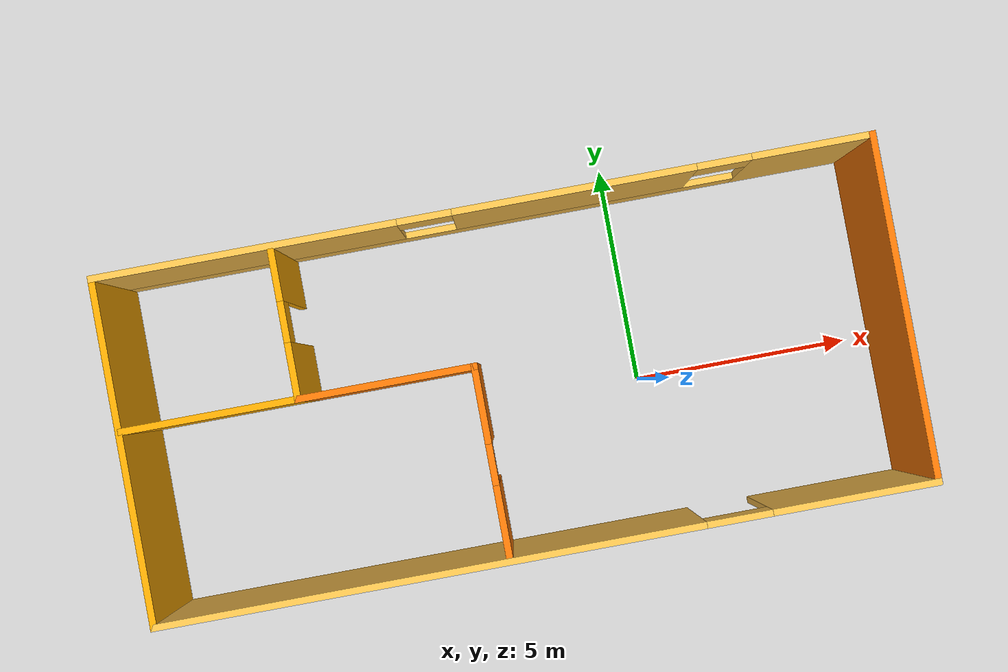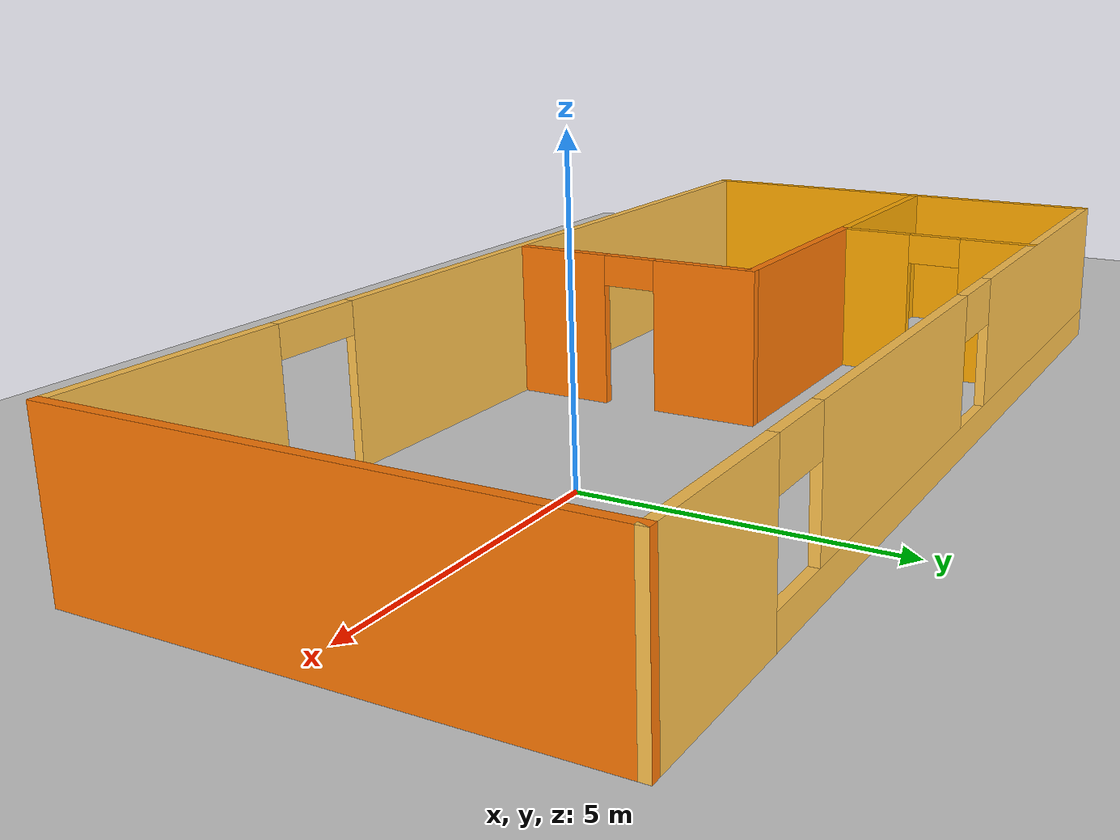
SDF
<sdf version="1.6">
 <world name="default">
  <light name="sun" type="directional">
   <pose>0 0 10 0 -0 0</pose>
   <diffuse>0.8 0.8 0.8 1</diffuse>
   <specular>0.2 0.2 0.2 1</specular>
   <attenuation>
    <range>1000</range>
    <constant>0.9</constant>
    <linear>0.01</linear>
    <quadratic>0.001</quadratic>
   </attenuation>
   <direction>-0.5 0.1 -0.9</direction>
  </light>
  <model name="ground_plane">
   <static>1</static>
   <link name="link">
    <collision name="collision">
     <geometry><plane><normal>0 0 1</normal><size>100 100</size></plane></geometry>
     <surface>
      <contact><collide_bitmask>65535</collide_bitmask></contact>
      <friction><ode><mu>100</mu><mu2>50</mu2></ode></friction>
     </surface>
    </collision>
    <visual name="visual">
     <cast_shadows>0</cast_shadows>
     <geometry><plane><normal>0 0 1</normal><size>100 100</size></plane></geometry>
     <material>
      <script><uri>file://media/materials/scripts/gazebo.material</uri><name>Gazebo/Grey</name></script>
     </material>
    </visual>
   </link>
  </model>
  <gravity>0 0 -9.8</gravity>
  <magnetic_field>6e-06 2.3e-05 -4.2e-05</magnetic_field>
  <atmosphere type="adiabatic"/>
  <physics name="default_physics" default="0" type="ode">
   <max_step_size>0.001</max_step_size>
   <real_time_factor>1</real_time_factor>
   <real_time_update_rate>1000</real_time_update_rate>
  </physics>
  <scene><ambient>0.4 0.4 0.4 1</ambient><background>0.7 0.7 0.7 1</background><shadows>1</shadows></scene>
  <spherical_coordinates>
   <surface_model>EARTH_WGS84</surface_model>
   <latitude_deg>0</latitude_deg>
   <longitude_deg>0</longitude_deg>
   <elevation>0</elevation>
   <heading_deg>0</heading_deg>
  </spherical_coordinates>
  <model name="Gustavo.world">
   <pose>-2.8936 0.485835 0 0 -0 0</pose>
   <link name="Wall_26">
    <collision name="Wall_26_Collision">
     <geometry><box><size>7.75 0.15 2.5</size></box></geometry>
     <pose>0 0 1.25 0 -0 0</pose>
    </collision>
    <visual name="Wall_26_Visual">
     <pose>0 0 1.25 0 -0 0</pose>
     <geometry><box><size>7.75 0.15 2.5</size></box></geometry>
     <material>
      <script><uri>file://media/materials/scripts/gazebo.material</uri><name>Gazebo/Grey</name></script>
      <ambient>1 0.666667 0 1</ambient>
     </material>
     <meta><layer>0</layer></meta>
    </visual>
    <pose>-8.55 0 0 0 0 -1.5708</pose>
   </link>
   <link name="Wall_27">
    <pose>0 -3.8 0 0 -0 0</pose>
    <visual name="Wall_27_Visual_0">
     <pose>-2.5641 0 1.25 0 -0 0</pose>
     <geometry><box><size>12.1218 0.15 2.5</size></box></geometry>
     <material>
      <script><uri>file://media/materials/scripts/gazebo.material</uri><name>Gazebo/Grey</name></script>
      <ambient>1 0.764706 0.305882 1</ambient>
     </material>
     <meta><layer>0</layer></meta>
    </visual>
    <collision name="Wall_27_Collision_0">
     <geometry><box><size>12.1218 0.15 2.5</size></box></geometry>
     <pose>-2.5641 0 1.25 0 -0 0</pose>
    </collision>
    <visual name="Wall_27_Visual_1">
     <pose>6.78173 0 1.25 0 -0 0</pose>
     <geometry><box><size>3.68654 0.15 2.5</size></box></geometry>
     <material>
      <script><uri>file://media/materials/scripts/gazebo.material</uri><name>Gazebo/Grey</name></script>
      <ambient>1 0.764706 0.305882 1</ambient>
     </material>
     <meta><layer>0</layer></meta>
    </visual>
    <collision name="Wall_27_Collision_1">
     <geometry><box><size>3.68654 0.15 2.5</size></box></geometry>
     <pose>6.78173 0 1.25 0 -0 0</pose>
    </collision>
    <visual name="Wall_27_Visual_2">
     <pose>4.21763 0 2.25 0 -0 0</pose>
     <geometry><box><size>1.44166 0.15 0.5</size></box></geometry>
     <material>
      <script><uri>file://media/materials/scripts/gazebo.material</uri><name>Gazebo/Grey</name></script>
      <ambient>1 0.764706 0.305882 1</ambient>
     </material>
     <meta><layer>0</layer></meta>
    </visual>
    <collision name="Wall_27_Collision_2">
     <geometry><box><size>1.44166 0.15 0.5</size></box></geometry>
     <pose>4.21763 0 2.25 0 -0 0</pose>
    </collision>
   </link>
   <link name="Wall_28">
    <collision name="Wall_28_Collision">
     <geometry><box><size>7.75 0.15 2.5</size></box></geometry>
     <pose>0 0 1.25 0 -0 0</pose>
    </collision>
    <visual name="Wall_28_Visual">
     <pose>0 0 1.25 0 -0 0</pose>
     <geometry><box><size>7.75 0.15 2.5</size></box></geometry>
     <material>
      <script><uri>file://media/materials/scripts/gazebo.material</uri><name>Gazebo/Grey</name></script>
      <ambient>0.996078 0.47451 0.0196078 1</ambient>
     </material>
     <meta><layer>0</layer></meta>
    </visual>
    <pose>8.55 0 0 0 -0 1.5708</pose>
   </link>
   <link name="Wall_29">
    <pose>0 3.8 0 0 -0 3.14159</pose>
    <visual name="Wall_29_Visual_0">
     <pose>-7.26297 0 1.25 0 -0 0</pose>
     <geometry><box><size>2.72406 0.15 2.5</size></box></geometry>
     <material>
      <script><uri>file://media/materials/scripts/gazebo.material</uri><name>Gazebo/Grey</name></script>
      <ambient>1 0.764706 0.305882 1</ambient>
     </material>
     <meta><layer>0</layer></meta>
    </visual>
    <collision name="Wall_29_Collision_0">
     <geometry><box><size>2.72406 0.15 2.5</size></box></geometry>
     <pose>-7.26297 0 1.25 0 -0 0</pose>
    </collision>
    <visual name="Wall_29_Visual_1">
     <pose>1.36203 0 0.25 0 -0 0</pose>
     <geometry><box><size>14.5259 0.15 0.5</size></box></geometry>
     <material>
      <script><uri>file://media/materials/scripts/gazebo.material</uri><name>Gazebo/Grey</name></script>
      <ambient>1 0.764706 0.305882 1</ambient>
     </material>
     <meta><layer>0</layer></meta>
    </visual>
    <collision name="Wall_29_Collision_1">
     <geometry><box><size>14.5259 0.15 0.5</size></box></geometry>
     <pose>1.36203 0 0.25 0 -0 0</pose>
    </collision>
    <visual name="Wall_29_Visual_2">
     <pose>-2.01231 0 1.5 0 -0 0</pose>
     <geometry><box><size>5.37726 0.15 2</size></box></geometry>
     <material>
      <script><uri>file://media/materials/scripts/gazebo.material</uri><name>Gazebo/Grey</name></script>
      <ambient>1 0.764706 0.305882 1</ambient>
     </material>
     <meta><layer>0</layer></meta>
    </visual>
    <collision name="Wall_29_Collision_2">
     <geometry><box><size>5.37726 0.15 2</size></box></geometry>
     <pose>-2.01231 0 1.5 0 -0 0</pose>
    </collision>
    <visual name="Wall_29_Visual_3">
     <pose>5.25066 0 1.5 0 -0 0</pose>
     <geometry><box><size>6.74868 0.15 2</size></box></geometry>
     <material>
      <script><uri>file://media/materials/scripts/gazebo.material</uri><name>Gazebo/Grey</name></script>
      <ambient>1 0.764706 0.305882 1</ambient>
     </material>
     <meta><layer>0</layer></meta>
    </visual>
    <collision name="Wall_29_Collision_3">
     <geometry><box><size>6.74868 0.15 2</size></box></geometry>
     <pose>5.25066 0 1.5 0 -0 0</pose>
    </collision>
    <visual name="Wall_29_Visual_4">
     <pose>-5.30094 0 2.15 0 -0 0</pose>
     <geometry><box><size>1.2 0.15 0.7</size></box></geometry>
     <material>
      <script><uri>file://media/materials/scripts/gazebo.material</uri><name>Gazebo/Grey</name></script>
      <ambient>1 0.764706 0.305882 1</ambient>
     </material>
     <meta><layer>0</layer></meta>
    </visual>
    <collision name="Wall_29_Collision_4">
     <geometry><box><size>1.2 0.15 0.7</size></box></geometry>
     <pose>-5.30094 0 2.15 0 -0 0</pose>
    </collision>
    <visual name="Wall_29_Visual_5">
     <pose>1.27632 0 2.15 0 -0 0</pose>
     <geometry><box><size>1.2 0.15 0.7</size></box></geometry>
     <material>
      <script><uri>file://media/materials/scripts/gazebo.material</uri><name>Gazebo/Grey</name></script>
      <ambient>1 0.764706 0.305882 1</ambient>
     </material>
     <meta><layer>0</layer></meta>
    </visual>
    <collision name="Wall_29_Collision_5">
     <geometry><box><size>1.2 0.15 0.7</size></box></geometry>
     <pose>1.27632 0 2.15 0 -0 0</pose>
    </collision>
   </link>
   <link name="Wall_31">
    <pose>-4.64233 2.125 0 0 0 -1.5708</pose>
    <visual name="Wall_31_Visual_0">
     <pose>-1.10567 0 1.25 0 -0 0</pose>
     <geometry><box><size>1.28866 0.15 2.5</size></box></geometry>
     <material>
      <script><uri>file://media/materials/scripts/gazebo.material</uri><name>Gazebo/Grey</name></script>
      <ambient>1 0.666667 0 1</ambient>
     </material>
     <meta><layer>0</layer></meta>
    </visual>
    <collision name="Wall_31_Collision_0">
     <geometry><box><size>1.28866 0.15 2.5</size></box></geometry>
     <pose>-1.10567 0 1.25 0 -0 0</pose>
    </collision>
    <visual name="Wall_31_Visual_1">
     <pose>1.09433 0 1.25 0 -0 0</pose>
     <geometry><box><size>1.31134 0.15 2.5</size></box></geometry>
     <material>
      <script><uri>file://media/materials/scripts/gazebo.material</uri><name>Gazebo/Grey</name></script>
      <ambient>1 0.666667 0 1</ambient>
     </material>
     <meta><layer>0</layer></meta>
    </visual>
    <collision name="Wall_31_Collision_1">
     <geometry><box><size>1.31134 0.15 2.5</size></box></geometry>
     <pose>1.09433 0 1.25 0 -0 0</pose>
    </collision>
    <visual name="Wall_31_Visual_2">
     <pose>-0.011339 0 2.25 0 -0 0</pose>
     <geometry><box><size>0.9 0.15 0.5</size></box></geometry>
     <material>
      <script><uri>file://media/materials/scripts/gazebo.material</uri><name>Gazebo/Grey</name></script>
      <ambient>1 0.666667 0 1</ambient>
     </material>
     <meta><layer>0</layer></meta>
    </visual>
    <collision name="Wall_31_Collision_2">
     <geometry><box><size>0.9 0.15 0.5</size></box></geometry>
     <pose>-0.011339 0 2.25 0 -0 0</pose>
    </collision>
   </link>
   <link name="Wall_32">
    <collision name="Wall_32_Collision">
     <geometry><box><size>4 0.15 2.5</size></box></geometry>
     <pose>0 0 1.25 0 -0 0</pose>
    </collision>
    <visual name="Wall_32_Visual">
     <pose>0 0 1.25 0 -0 0</pose>
     <geometry><box><size>4 0.15 2.5</size></box></geometry>
     <material>
      <script><uri>file://media/materials/scripts/gazebo.material</uri><name>Gazebo/Grey</name></script>
      <ambient>0.996078 0.47451 0.0196078 1</ambient>
     </material>
     <meta><layer>0</layer></meta>
    </visual>
    <pose>-2.71733 0.45 0 0 -0 0</pose>
   </link>
   <link name="Wall_33">
    <pose>-0.792332 -1.6 0 0 0 -1.5708</pose>
    <visual name="Wall_33_Visual_0">
     <pose>-1.24053 0 1.25 0 -0 0</pose>
     <geometry><box><size>1.76895 0.15 2.5</size></box></geometry>
     <material>
      <script><uri>file://media/materials/scripts/gazebo.material</uri><name>Gazebo/Grey</name></script>
      <ambient>0.996078 0.47451 0.0196078 1</ambient>
     </material>
     <meta><layer>0</layer></meta>
    </visual>
    <collision name="Wall_33_Collision_0">
     <geometry><box><size>1.76895 0.15 2.5</size></box></geometry>
     <pose>-1.24053 0 1.25 0 -0 0</pose>
    </collision>
    <visual name="Wall_33_Visual_1">
     <pose>1.33447 0 1.25 0 -0 0</pose>
     <geometry><box><size>1.58105 0.15 2.5</size></box></geometry>
     <material>
      <script><uri>file://media/materials/scripts/gazebo.material</uri><name>Gazebo/Grey</name></script>
      <ambient>0.996078 0.47451 0.0196078 1</ambient>
     </material>
     <meta><layer>0</layer></meta>
    </visual>
    <collision name="Wall_33_Collision_1">
     <geometry><box><size>1.58105 0.15 2.5</size></box></geometry>
     <pose>1.33447 0 1.25 0 -0 0</pose>
    </collision>
    <visual name="Wall_33_Visual_2">
     <pose>0.093949 0 2.25 0 -0 0</pose>
     <geometry><box><size>0.9 0.15 0.5</size></box></geometry>
     <material>
      <script><uri>file://media/materials/scripts/gazebo.material</uri><name>Gazebo/Grey</name></script>
      <ambient>0.996078 0.47451 0.0196078 1</ambient>
     </material>
     <meta><layer>0</layer></meta>
    </visual>
    <collision name="Wall_33_Collision_2">
     <geometry><box><size>0.9 0.15 0.5</size></box></geometry>
     <pose>0.093949 0 2.25 0 -0 0</pose>
    </collision>
   </link>
   <link name="Wall_35">
    <collision name="Wall_35_Collision">
     <geometry><box><size>4 0.15 2.5</size></box></geometry>
     <pose>0 0 1.25 0 -0 0</pose>
    </collision>
    <visual name="Wall_35_Visual">
     <pose>0 0 1.25 0 -0 0</pose>
     <geometry><box><size>4 0.15 2.5</size></box></geometry>
     <material>
      <script><uri>file://media/materials/scripts/gazebo.material</uri><name>Gazebo/Grey</name></script>
      <ambient>1 0.666667 0 1</ambient>
     </material>
     <meta><layer>0</layer></meta>
    </visual>
    <pose>-6.56733 0.45 0 0 -0 3.14159</pose>
   </link>
   <static>1</static>
  </model>
 </world>
</sdf>
